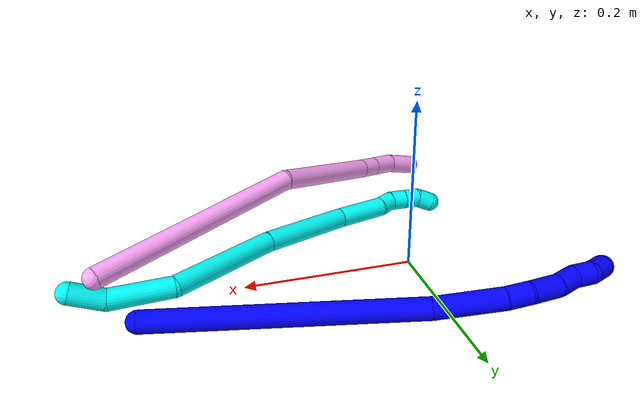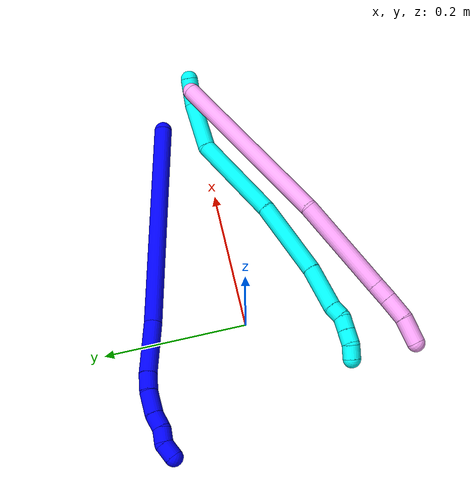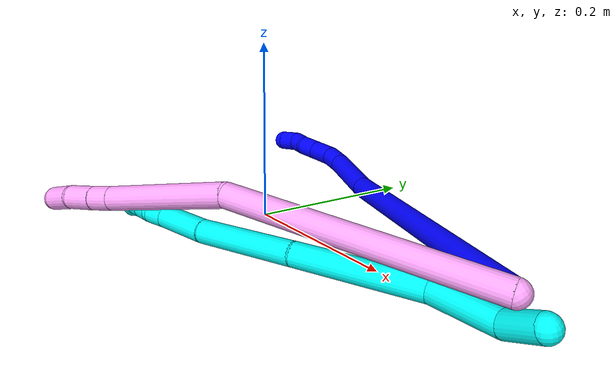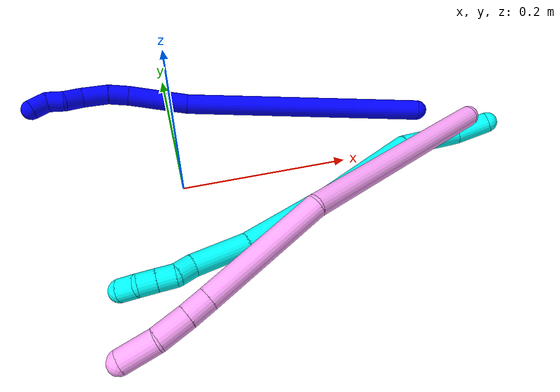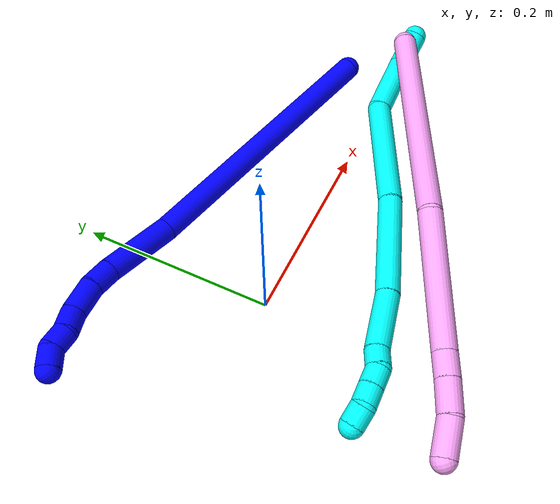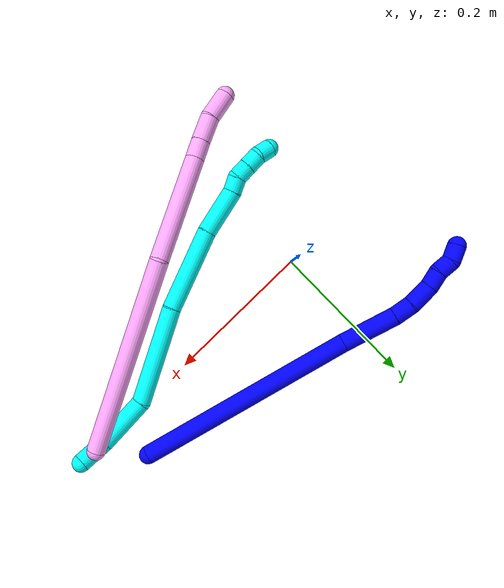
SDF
<sdf version="1.7">
 <world name="default">
  <model name="1">
   <static>0</static>
   <link name="1">
    <collision name="collision-cylinder-e_1_1_4">
     <pose>-0.093249 -0.012982 -0.116872 3.03097 -0.670455 -2.82636</pose>
     <geometry><cylinder><radius>0.0125</radius><length>0.300153</length></cylinder></geometry>
     <surface>
      <friction><ode><mu>1.16</mu><mu2>1.16</mu2><slip1>0</slip1><slip2>0</slip2></ode></friction>
      <contact><ode><kp>1e+06</kp><kd>1</kd><max_vel>0</max_vel><min_depth>0.001</min_depth></ode></contact>
     </surface>
    </collision>
    <visual name="visual-cylinder-e_1_1_4">
     <pose>-0.093249 -0.012982 -0.116872 3.03097 -0.670455 -2.82636</pose>
     <geometry><cylinder><radius>0.0125</radius><length>0.300153</length></cylinder></geometry>
     <material><ambient>0 0 1 1</ambient></material>
    </visual>
    <collision name="collision-cylinder-e_2_4_5">
     <pose>-0.212755 -0.025501 -0.26146 -3.12489 -0.758295 3.09967</pose>
     <geometry><cylinder><radius>0.0125</radius><length>0.076363</length></cylinder></geometry>
     <surface>
      <friction><ode><mu>1.16</mu><mu2>1.16</mu2><slip1>0</slip1><slip2>0</slip2></ode></friction>
      <contact><ode><kp>1e+06</kp><kd>1</kd><max_vel>0</max_vel><min_depth>0.001</min_depth></ode></contact>
     </surface>
    </collision>
    <visual name="visual-cylinder-e_2_4_5">
     <pose>-0.212755 -0.025501 -0.26146 -3.12489 -0.758295 3.09967</pose>
     <geometry><cylinder><radius>0.0125</radius><length>0.076363</length></cylinder></geometry>
     <material><ambient>0 0 1 1</ambient></material>
    </visual>
    <collision name="collision-cylinder-e_3_5_6">
     <pose>-0.248749 -0.026116 -0.297613 3.01453 -0.852862 -2.86334</pose>
     <geometry><cylinder><radius>0.0125</radius><length>0.025858</length></cylinder></geometry>
     <surface>
      <friction><ode><mu>1.16</mu><mu2>1.16</mu2><slip1>0</slip1><slip2>0</slip2></ode></friction>
      <contact><ode><kp>1e+06</kp><kd>1</kd><max_vel>0</max_vel><min_depth>0.001</min_depth></ode></contact>
     </surface>
    </collision>
    <visual name="visual-cylinder-e_3_5_6">
     <pose>-0.248749 -0.026116 -0.297613 3.01453 -0.852862 -2.86334</pose>
     <geometry><cylinder><radius>0.0125</radius><length>0.025858</length></cylinder></geometry>
     <material><ambient>0 0 1 1</ambient></material>
    </visual>
    <collision name="collision-cylinder-e_4_6_7">
     <pose>-0.270523 -0.031819 -0.316069 2.70906 -0.828728 -2.21508</pose>
     <geometry><cylinder><radius>0.0125</radius><length>0.032659</length></cylinder></geometry>
     <surface>
      <friction><ode><mu>1.16</mu><mu2>1.16</mu2><slip1>0</slip1><slip2>0</slip2></ode></friction>
      <contact><ode><kp>1e+06</kp><kd>1</kd><max_vel>0</max_vel><min_depth>0.001</min_depth></ode></contact>
     </surface>
    </collision>
    <visual name="visual-cylinder-e_4_6_7">
     <pose>-0.270523 -0.031819 -0.316069 2.70906 -0.828728 -2.21508</pose>
     <geometry><cylinder><radius>0.0125</radius><length>0.032659</length></cylinder></geometry>
     <material><ambient>0 0 1 1</ambient></material>
    </visual>
    <collision name="collision-cylinder-e_5_7_8">
     <pose>-0.291971 -0.04081 -0.330665 2.37983 -0.979128 -1.85264</pose>
     <geometry><cylinder><radius>0.0125</radius><length>0.022679</length></cylinder></geometry>
     <surface>
      <friction><ode><mu>1.16</mu><mu2>1.16</mu2><slip1>0</slip1><slip2>0</slip2></ode></friction>
      <contact><ode><kp>1e+06</kp><kd>1</kd><max_vel>0</max_vel><min_depth>0.001</min_depth></ode></contact>
     </surface>
    </collision>
    <visual name="visual-cylinder-e_5_7_8">
     <pose>-0.291971 -0.04081 -0.330665 2.37983 -0.979128 -1.85264</pose>
     <geometry><cylinder><radius>0.0125</radius><length>0.022679</length></cylinder></geometry>
     <material><ambient>0 0 1 1</ambient></material>
    </visual>
    <collision name="collision-cylinder-e_6_8_9">
     <pose>-0.308998 -0.047205 -0.342048 2.85184 -0.820152 -2.49398</pose>
     <geometry><cylinder><radius>0.0125</radius><length>0.020826</length></cylinder></geometry>
     <surface>
      <friction><ode><mu>1.16</mu><mu2>1.16</mu2><slip1>0</slip1><slip2>0</slip2></ode></friction>
      <contact><ode><kp>1e+06</kp><kd>1</kd><max_vel>0</max_vel><min_depth>0.001</min_depth></ode></contact>
     </surface>
    </collision>
    <visual name="visual-cylinder-e_6_8_9">
     <pose>-0.308998 -0.047205 -0.342048 2.85184 -0.820152 -2.49398</pose>
     <geometry><cylinder><radius>0.0125</radius><length>0.020826</length></cylinder></geometry>
     <material><ambient>0 0 1 1</ambient></material>
    </visual>
    <collision name="collision-cylinder-e_7_9_2">
     <pose>-0.324174 -0.055791 -0.352727 2.1042 -0.781924 -1.25076</pose>
     <geometry><cylinder><radius>0.0125</radius><length>0.021462</length></cylinder></geometry>
     <surface>
      <friction><ode><mu>1.16</mu><mu2>1.16</mu2><slip1>0</slip1><slip2>0</slip2></ode></friction>
      <contact><ode><kp>1e+06</kp><kd>1</kd><max_vel>0</max_vel><min_depth>0.001</min_depth></ode></contact>
     </surface>
    </collision>
    <visual name="visual-cylinder-e_7_9_2">
     <pose>-0.324174 -0.055791 -0.352727 2.1042 -0.781924 -1.25076</pose>
     <geometry><cylinder><radius>0.0125</radius><length>0.021462</length></cylinder></geometry>
     <material><ambient>0 0 1 1</ambient></material>
    </visual>
    <collision name="collision-sphere-2">
     <pose>-0.331735 -0.062347 -0.356598 0 -0 0</pose>
     <geometry><sphere><radius>0.0125</radius></sphere></geometry>
     <surface>
      <friction><ode><mu>1.16</mu><mu2>1.16</mu2><slip1>0</slip1><slip2>0</slip2></ode></friction>
      <contact><ode><kp>1e+06</kp><kd>1</kd><max_vel>0</max_vel><min_depth>0.001</min_depth></ode></contact>
     </surface>
    </collision>
    <visual name="visual-sphere-2">
     <pose>-0.331735 -0.062347 -0.356598 0 -0 0</pose>
     <geometry><sphere><radius>0.0125</radius></sphere></geometry>
     <material><ambient>0 0 1 1</ambient></material>
    </visual>
    <collision name="collision-sphere-9">
     <pose>-0.316612 -0.049235 -0.348855 0 -0 0</pose>
     <geometry><sphere><radius>0.0125</radius></sphere></geometry>
     <surface>
      <friction><ode><mu>1.16</mu><mu2>1.16</mu2><slip1>0</slip1><slip2>0</slip2></ode></friction>
      <contact><ode><kp>1e+06</kp><kd>1</kd><max_vel>0</max_vel><min_depth>0.001</min_depth></ode></contact>
     </surface>
    </collision>
    <visual name="visual-sphere-9">
     <pose>-0.316612 -0.049235 -0.348855 0 -0 0</pose>
     <geometry><sphere><radius>0.0125</radius></sphere></geometry>
     <material><ambient>0 0 1 1</ambient></material>
    </visual>
    <collision name="collision-sphere-4">
     <pose>-0.186498 -0.025964 -0.233744 0 -0 0</pose>
     <geometry><sphere><radius>0.0125</radius></sphere></geometry>
     <surface>
      <friction><ode><mu>1.16</mu><mu2>1.16</mu2><slip1>0</slip1><slip2>0</slip2></ode></friction>
      <contact><ode><kp>1e+06</kp><kd>1</kd><max_vel>0</max_vel><min_depth>0.001</min_depth></ode></contact>
     </surface>
    </collision>
    <visual name="visual-sphere-4">
     <pose>-0.186498 -0.025964 -0.233744 0 -0 0</pose>
     <geometry><sphere><radius>0.0125</radius></sphere></geometry>
     <material><ambient>0 0 1 1</ambient></material>
    </visual>
    <collision name="collision-sphere-1">
     <geometry><sphere><radius>0.0125</radius></sphere></geometry>
     <surface>
      <friction><ode><mu>1.16</mu><mu2>1.16</mu2><slip1>0</slip1><slip2>0</slip2></ode></friction>
      <contact><ode><kp>1e+06</kp><kd>1</kd><max_vel>0</max_vel><min_depth>0.001</min_depth></ode></contact>
     </surface>
    </collision>
    <visual name="visual-sphere-1">
     <geometry><sphere><radius>0.0125</radius></sphere></geometry>
     <material><ambient>0 0 1 1</ambient></material>
    </visual>
    <collision name="collision-sphere-8">
     <pose>-0.301383 -0.045176 -0.335242 0 -0 0</pose>
     <geometry><sphere><radius>0.0125</radius></sphere></geometry>
     <surface>
      <friction><ode><mu>1.16</mu><mu2>1.16</mu2><slip1>0</slip1><slip2>0</slip2></ode></friction>
      <contact><ode><kp>1e+06</kp><kd>1</kd><max_vel>0</max_vel><min_depth>0.001</min_depth></ode></contact>
     </surface>
    </collision>
    <visual name="visual-sphere-8">
     <pose>-0.301383 -0.045176 -0.335242 0 -0 0</pose>
     <geometry><sphere><radius>0.0125</radius></sphere></geometry>
     <material><ambient>0 0 1 1</ambient></material>
    </visual>
    <collision name="collision-sphere-5">
     <pose>-0.239011 -0.025038 -0.289176 0 -0 0</pose>
     <geometry><sphere><radius>0.0125</radius></sphere></geometry>
     <surface>
      <friction><ode><mu>1.16</mu><mu2>1.16</mu2><slip1>0</slip1><slip2>0</slip2></ode></friction>
      <contact><ode><kp>1e+06</kp><kd>1</kd><max_vel>0</max_vel><min_depth>0.001</min_depth></ode></contact>
     </surface>
    </collision>
    <visual name="visual-sphere-5">
     <pose>-0.239011 -0.025038 -0.289176 0 -0 0</pose>
     <geometry><sphere><radius>0.0125</radius></sphere></geometry>
     <material><ambient>0 0 1 1</ambient></material>
    </visual>
    <collision name="collision-sphere-6">
     <pose>-0.258487 -0.027194 -0.30605 0 -0 0</pose>
     <geometry><sphere><radius>0.0125</radius></sphere></geometry>
     <surface>
      <friction><ode><mu>1.16</mu><mu2>1.16</mu2><slip1>0</slip1><slip2>0</slip2></ode></friction>
      <contact><ode><kp>1e+06</kp><kd>1</kd><max_vel>0</max_vel><min_depth>0.001</min_depth></ode></contact>
     </surface>
    </collision>
    <visual name="visual-sphere-6">
     <pose>-0.258487 -0.027194 -0.30605 0 -0 0</pose>
     <geometry><sphere><radius>0.0125</radius></sphere></geometry>
     <material><ambient>0 0 1 1</ambient></material>
    </visual>
    <collision name="collision-sphere-7">
     <pose>-0.282559 -0.036445 -0.326088 0 -0 0</pose>
     <geometry><sphere><radius>0.0125</radius></sphere></geometry>
     <surface>
      <friction><ode><mu>1.16</mu><mu2>1.16</mu2><slip1>0</slip1><slip2>0</slip2></ode></friction>
      <contact><ode><kp>1e+06</kp><kd>1</kd><max_vel>0</max_vel><min_depth>0.001</min_depth></ode></contact>
     </surface>
    </collision>
    <visual name="visual-sphere-7">
     <pose>-0.282559 -0.036445 -0.326088 0 -0 0</pose>
     <geometry><sphere><radius>0.0125</radius></sphere></geometry>
     <material><ambient>0 0 1 1</ambient></material>
    </visual>
    <inertial>
     <pose>-0.159034 -0.021329 -0.190513 0 -0 0</pose>
     <mass>0.5</mass>
     <inertia>
      <ixx>-0.002301</ixx>
      <ixy>0</ixy>
      <ixz>0</ixz>
      <iyy>0.001678</iyy>
      <iyz>0</iyz>
      <izz>0.001615</izz>
     </inertia>
    </inertial>
   </link>
   <pose>0.317071 0.051595 0.012116 0.922068 0.744205 0.355994</pose>
  </model>
  <model name="3">
   <static>0</static>
   <link name="3">
    <collision name="collision-cylinder-e_1_1_4">
     <pose>-0.018708 0.000152 -0.006574 -3.11844 -1.2328 3.10892</pose>
     <geometry><cylinder><radius>0.0125</radius><length>0.03966</length></cylinder></geometry>
     <surface>
      <friction><ode><mu>1.16</mu><mu2>1.16</mu2><slip1>0</slip1><slip2>0</slip2></ode></friction>
      <contact><ode><kp>1e+06</kp><kd>1</kd><max_vel>0</max_vel><min_depth>0.001</min_depth></ode></contact>
     </surface>
    </collision>
    <visual name="visual-cylinder-e_1_1_4">
     <pose>-0.018708 0.000152 -0.006574 -3.11844 -1.2328 3.10892</pose>
     <geometry><cylinder><radius>0.0125</radius><length>0.03966</length></cylinder></geometry>
     <material><ambient>0.003922 1 0.996078 1</ambient></material>
    </visual>
    <collision name="collision-cylinder-e_2_4_5">
     <pose>-0.073826 -0.000347 -0.011537 0.384258 -1.52311 -0.366765</pose>
     <geometry><cylinder><radius>0.0125</radius><length>0.072902</length></cylinder></geometry>
     <surface>
      <friction><ode><mu>1.16</mu><mu2>1.16</mu2><slip1>0</slip1><slip2>0</slip2></ode></friction>
      <contact><ode><kp>1e+06</kp><kd>1</kd><max_vel>0</max_vel><min_depth>0.001</min_depth></ode></contact>
     </surface>
    </collision>
    <visual name="visual-cylinder-e_2_4_5">
     <pose>-0.073826 -0.000347 -0.011537 0.384258 -1.52311 -0.366765</pose>
     <geometry><cylinder><radius>0.0125</radius><length>0.072902</length></cylinder></geometry>
     <material><ambient>0.003922 1 0.996078 1</ambient></material>
    </visual>
    <collision name="collision-cylinder-e_3_5_6">
     <pose>-0.169569 -0.028057 0.001071 1.18478 -1.11335 -0.793285</pose>
     <geometry><cylinder><radius>0.0125</radius><length>0.132266</length></cylinder></geometry>
     <surface>
      <friction><ode><mu>1.16</mu><mu2>1.16</mu2><slip1>0</slip1><slip2>0</slip2></ode></friction>
      <contact><ode><kp>1e+06</kp><kd>1</kd><max_vel>0</max_vel><min_depth>0.001</min_depth></ode></contact>
     </surface>
    </collision>
    <visual name="visual-cylinder-e_3_5_6">
     <pose>-0.169569 -0.028057 0.001071 1.18478 -1.11335 -0.793285</pose>
     <geometry><cylinder><radius>0.0125</radius><length>0.132266</length></cylinder></geometry>
     <material><ambient>0.003922 1 0.996078 1</ambient></material>
    </visual>
    <collision name="collision-cylinder-e_4_6_7">
     <pose>-0.281697 -0.073085 0.016896 1.30831 -1.23197 -0.994564</pose>
     <geometry><cylinder><radius>0.0125</radius><length>0.111955</length></cylinder></geometry>
     <surface>
      <friction><ode><mu>1.16</mu><mu2>1.16</mu2><slip1>0</slip1><slip2>0</slip2></ode></friction>
      <contact><ode><kp>1e+06</kp><kd>1</kd><max_vel>0</max_vel><min_depth>0.001</min_depth></ode></contact>
     </surface>
    </collision>
    <visual name="visual-cylinder-e_4_6_7">
     <pose>-0.281697 -0.073085 0.016896 1.30831 -1.23197 -0.994564</pose>
     <geometry><cylinder><radius>0.0125</radius><length>0.111955</length></cylinder></geometry>
     <material><ambient>0.003922 1 0.996078 1</ambient></material>
    </visual>
    <collision name="collision-cylinder-e_5_7_8">
     <pose>-0.365289 -0.096813 0.024642 1.1018 -1.36414 -0.92554</pose>
     <geometry><cylinder><radius>0.0125</radius><length>0.062933</length></cylinder></geometry>
     <surface>
      <friction><ode><mu>1.16</mu><mu2>1.16</mu2><slip1>0</slip1><slip2>0</slip2></ode></friction>
      <contact><ode><kp>1e+06</kp><kd>1</kd><max_vel>0</max_vel><min_depth>0.001</min_depth></ode></contact>
     </surface>
    </collision>
    <visual name="visual-cylinder-e_5_7_8">
     <pose>-0.365289 -0.096813 0.024642 1.1018 -1.36414 -0.92554</pose>
     <geometry><cylinder><radius>0.0125</radius><length>0.062933</length></cylinder></geometry>
     <material><ambient>0.003922 1 0.996078 1</ambient></material>
    </visual>
    <collision name="collision-cylinder-e_6_8_9">
     <pose>-0.405123 -0.106331 0.029843 1.02499 -1.11792 -0.676791</pose>
     <geometry><cylinder><radius>0.0125</radius><length>0.020101</length></cylinder></geometry>
     <surface>
      <friction><ode><mu>1.16</mu><mu2>1.16</mu2><slip1>0</slip1><slip2>0</slip2></ode></friction>
      <contact><ode><kp>1e+06</kp><kd>1</kd><max_vel>0</max_vel><min_depth>0.001</min_depth></ode></contact>
     </surface>
    </collision>
    <visual name="visual-cylinder-e_6_8_9">
     <pose>-0.405123 -0.106331 0.029843 1.02499 -1.11792 -0.676791</pose>
     <geometry><cylinder><radius>0.0125</radius><length>0.020101</length></cylinder></geometry>
     <material><ambient>0.003922 1 0.996078 1</ambient></material>
    </visual>
    <collision name="collision-cylinder-e_7_9_10">
     <pose>-0.424209 -0.11025 0.032123 1.59013 -1.55485 -1.57418</pose>
     <geometry><cylinder><radius>0.0125</radius><length>0.020101</length></cylinder></geometry>
     <surface>
      <friction><ode><mu>1.16</mu><mu2>1.16</mu2><slip1>0</slip1><slip2>0</slip2></ode></friction>
      <contact><ode><kp>1e+06</kp><kd>1</kd><max_vel>0</max_vel><min_depth>0.001</min_depth></ode></contact>
     </surface>
    </collision>
    <visual name="visual-cylinder-e_7_9_10">
     <pose>-0.424209 -0.11025 0.032123 1.59013 -1.55485 -1.57418</pose>
     <geometry><cylinder><radius>0.0125</radius><length>0.020101</length></cylinder></geometry>
     <material><ambient>0.003922 1 0.996078 1</ambient></material>
    </visual>
    <collision name="collision-cylinder-e_8_10_11">
     <pose>-0.444262 -0.110638 0.032077 1.75364 -1.54766 -1.73085</pose>
     <geometry><cylinder><radius>0.0125</radius><length>0.020013</length></cylinder></geometry>
     <surface>
      <friction><ode><mu>1.16</mu><mu2>1.16</mu2><slip1>0</slip1><slip2>0</slip2></ode></friction>
      <contact><ode><kp>1e+06</kp><kd>1</kd><max_vel>0</max_vel><min_depth>0.001</min_depth></ode></contact>
     </surface>
    </collision>
    <visual name="visual-cylinder-e_8_10_11">
     <pose>-0.444262 -0.110638 0.032077 1.75364 -1.54766 -1.73085</pose>
     <geometry><cylinder><radius>0.0125</radius><length>0.020013</length></cylinder></geometry>
     <material><ambient>0.003922 1 0.996078 1</ambient></material>
    </visual>
    <collision name="collision-cylinder-e_9_11_2">
     <pose>-0.463527 -0.109944 0.028283 -2.9007 -1.17554 2.78224</pose>
     <geometry><cylinder><radius>0.0125</radius><length>0.020069</length></cylinder></geometry>
     <surface>
      <friction><ode><mu>1.16</mu><mu2>1.16</mu2><slip1>0</slip1><slip2>0</slip2></ode></friction>
      <contact><ode><kp>1e+06</kp><kd>1</kd><max_vel>0</max_vel><min_depth>0.001</min_depth></ode></contact>
     </surface>
    </collision>
    <visual name="visual-cylinder-e_9_11_2">
     <pose>-0.463527 -0.109944 0.028283 -2.9007 -1.17554 2.78224</pose>
     <geometry><cylinder><radius>0.0125</radius><length>0.020069</length></cylinder></geometry>
     <material><ambient>0.003922 1 0.996078 1</ambient></material>
    </visual>
    <collision name="collision-sphere-2">
     <pose>-0.472788 -0.109022 0.024531 0 -0 0</pose>
     <geometry><sphere><radius>0.0125</radius></sphere></geometry>
     <surface>
      <friction><ode><mu>1.16</mu><mu2>1.16</mu2><slip1>0</slip1><slip2>0</slip2></ode></friction>
      <contact><ode><kp>1e+06</kp><kd>1</kd><max_vel>0</max_vel><min_depth>0.001</min_depth></ode></contact>
     </surface>
    </collision>
    <visual name="visual-sphere-2">
     <pose>-0.472788 -0.109022 0.024531 0 -0 0</pose>
     <geometry><sphere><radius>0.0125</radius></sphere></geometry>
     <material><ambient>0.003922 1 0.996078 1</ambient></material>
    </visual>
    <collision name="collision-sphere-11">
     <pose>-0.454266 -0.110866 0.032035 0 -0 0</pose>
     <geometry><sphere><radius>0.0125</radius></sphere></geometry>
     <surface>
      <friction><ode><mu>1.16</mu><mu2>1.16</mu2><slip1>0</slip1><slip2>0</slip2></ode></friction>
      <contact><ode><kp>1e+06</kp><kd>1</kd><max_vel>0</max_vel><min_depth>0.001</min_depth></ode></contact>
     </surface>
    </collision>
    <visual name="visual-sphere-11">
     <pose>-0.454266 -0.110866 0.032035 0 -0 0</pose>
     <geometry><sphere><radius>0.0125</radius></sphere></geometry>
     <material><ambient>0.003922 1 0.996078 1</ambient></material>
    </visual>
    <collision name="collision-sphere-10">
     <pose>-0.434259 -0.110411 0.03212 0 -0 0</pose>
     <geometry><sphere><radius>0.0125</radius></sphere></geometry>
     <surface>
      <friction><ode><mu>1.16</mu><mu2>1.16</mu2><slip1>0</slip1><slip2>0</slip2></ode></friction>
      <contact><ode><kp>1e+06</kp><kd>1</kd><max_vel>0</max_vel><min_depth>0.001</min_depth></ode></contact>
     </surface>
    </collision>
    <visual name="visual-sphere-10">
     <pose>-0.434259 -0.110411 0.03212 0 -0 0</pose>
     <geometry><sphere><radius>0.0125</radius></sphere></geometry>
     <material><ambient>0.003922 1 0.996078 1</ambient></material>
    </visual>
    <collision name="collision-sphere-9">
     <pose>-0.41416 -0.11009 0.032126 0 -0 0</pose>
     <geometry><sphere><radius>0.0125</radius></sphere></geometry>
     <surface>
      <friction><ode><mu>1.16</mu><mu2>1.16</mu2><slip1>0</slip1><slip2>0</slip2></ode></friction>
      <contact><ode><kp>1e+06</kp><kd>1</kd><max_vel>0</max_vel><min_depth>0.001</min_depth></ode></contact>
     </surface>
    </collision>
    <visual name="visual-sphere-9">
     <pose>-0.41416 -0.11009 0.032126 0 -0 0</pose>
     <geometry><sphere><radius>0.0125</radius></sphere></geometry>
     <material><ambient>0.003922 1 0.996078 1</ambient></material>
    </visual>
    <collision name="collision-sphere-4">
     <pose>-0.037416 0.000304 -0.013148 0 -0 0</pose>
     <geometry><sphere><radius>0.0125</radius></sphere></geometry>
     <surface>
      <friction><ode><mu>1.16</mu><mu2>1.16</mu2><slip1>0</slip1><slip2>0</slip2></ode></friction>
      <contact><ode><kp>1e+06</kp><kd>1</kd><max_vel>0</max_vel><min_depth>0.001</min_depth></ode></contact>
     </surface>
    </collision>
    <visual name="visual-sphere-4">
     <pose>-0.037416 0.000304 -0.013148 0 -0 0</pose>
     <geometry><sphere><radius>0.0125</radius></sphere></geometry>
     <material><ambient>0.003922 1 0.996078 1</ambient></material>
    </visual>
    <collision name="collision-sphere-1">
     <geometry><sphere><radius>0.0125</radius></sphere></geometry>
     <surface>
      <friction><ode><mu>1.16</mu><mu2>1.16</mu2><slip1>0</slip1><slip2>0</slip2></ode></friction>
      <contact><ode><kp>1e+06</kp><kd>1</kd><max_vel>0</max_vel><min_depth>0.001</min_depth></ode></contact>
     </surface>
    </collision>
    <visual name="visual-sphere-1">
     <geometry><sphere><radius>0.0125</radius></sphere></geometry>
     <material><ambient>0.003922 1 0.996078 1</ambient></material>
    </visual>
    <collision name="collision-sphere-8">
     <pose>-0.396085 -0.102573 0.02756 0 -0 0</pose>
     <geometry><sphere><radius>0.0125</radius></sphere></geometry>
     <surface>
      <friction><ode><mu>1.16</mu><mu2>1.16</mu2><slip1>0</slip1><slip2>0</slip2></ode></friction>
      <contact><ode><kp>1e+06</kp><kd>1</kd><max_vel>0</max_vel><min_depth>0.001</min_depth></ode></contact>
     </surface>
    </collision>
    <visual name="visual-sphere-8">
     <pose>-0.396085 -0.102573 0.02756 0 -0 0</pose>
     <geometry><sphere><radius>0.0125</radius></sphere></geometry>
     <material><ambient>0.003922 1 0.996078 1</ambient></material>
    </visual>
    <collision name="collision-sphere-5">
     <pose>-0.110236 -0.000998 -0.009926 0 -0 0</pose>
     <geometry><sphere><radius>0.0125</radius></sphere></geometry>
     <surface>
      <friction><ode><mu>1.16</mu><mu2>1.16</mu2><slip1>0</slip1><slip2>0</slip2></ode></friction>
      <contact><ode><kp>1e+06</kp><kd>1</kd><max_vel>0</max_vel><min_depth>0.001</min_depth></ode></contact>
     </surface>
    </collision>
    <visual name="visual-sphere-5">
     <pose>-0.110236 -0.000998 -0.009926 0 -0 0</pose>
     <geometry><sphere><radius>0.0125</radius></sphere></geometry>
     <material><ambient>0.003922 1 0.996078 1</ambient></material>
    </visual>
    <collision name="collision-sphere-6">
     <pose>-0.228902 -0.055117 0.012068 0 -0 0</pose>
     <geometry><sphere><radius>0.0125</radius></sphere></geometry>
     <surface>
      <friction><ode><mu>1.16</mu><mu2>1.16</mu2><slip1>0</slip1><slip2>0</slip2></ode></friction>
      <contact><ode><kp>1e+06</kp><kd>1</kd><max_vel>0</max_vel><min_depth>0.001</min_depth></ode></contact>
     </surface>
    </collision>
    <visual name="visual-sphere-6">
     <pose>-0.228902 -0.055117 0.012068 0 -0 0</pose>
     <geometry><sphere><radius>0.0125</radius></sphere></geometry>
     <material><ambient>0.003922 1 0.996078 1</ambient></material>
    </visual>
    <collision name="collision-sphere-7">
     <pose>-0.334492 -0.091054 0.021723 0 -0 0</pose>
     <geometry><sphere><radius>0.0125</radius></sphere></geometry>
     <surface>
      <friction><ode><mu>1.16</mu><mu2>1.16</mu2><slip1>0</slip1><slip2>0</slip2></ode></friction>
      <contact><ode><kp>1e+06</kp><kd>1</kd><max_vel>0</max_vel><min_depth>0.001</min_depth></ode></contact>
     </surface>
    </collision>
    <visual name="visual-sphere-7">
     <pose>-0.334492 -0.091054 0.021723 0 -0 0</pose>
     <geometry><sphere><radius>0.0125</radius></sphere></geometry>
     <material><ambient>0.003922 1 0.996078 1</ambient></material>
    </visual>
    <inertial>
     <pose>-0.235884 -0.053559 0.009875 0 -0 0</pose>
     <mass>0.5</mass>
     <inertia>
      <ixx>-5.2e-05</ixx>
      <ixy>0</ixy>
      <ixz>0</ixz>
      <iyy>0.00024</iyy>
      <iyz>0</iyz>
      <izz>0.000489</izz>
     </inertia>
    </inertial>
   </link>
   <pose>0.385022 -0.003141 0.025317 0.223522 -0.028723 0.030268</pose>
  </model>
  <model name="4">
   <static>0</static>
   <link name="4">
    <collision name="collision-cylinder-e_1_1_4">
     <pose>-0.062915 -0.072615 0.089892 0.679483 -0.49857 -0.179477</pose>
     <geometry><cylinder><radius>0.0125</radius><length>0.263148</length></cylinder></geometry>
     <surface>
      <friction><ode><mu>1.16</mu><mu2>1.16</mu2><slip1>0</slip1><slip2>0</slip2></ode></friction>
      <contact><ode><kp>1e+06</kp><kd>1</kd><max_vel>0</max_vel><min_depth>0.001</min_depth></ode></contact>
     </surface>
    </collision>
    <visual name="visual-cylinder-e_1_1_4">
     <pose>-0.062915 -0.072615 0.089892 0.679483 -0.49857 -0.179477</pose>
     <geometry><cylinder><radius>0.0125</radius><length>0.263148</length></cylinder></geometry>
     <material><ambient>1 0.65098 0.996078 1</ambient></material>
    </visual>
    <collision name="collision-cylinder-e_2_4_5">
     <pose>-0.143077 -0.17699 0.240013 0.485257 -0.248083 -0.061699</pose>
     <geometry><cylinder><radius>0.0125</radius><length>0.140481</length></cylinder></geometry>
     <surface>
      <friction><ode><mu>1.16</mu><mu2>1.16</mu2><slip1>0</slip1><slip2>0</slip2></ode></friction>
      <contact><ode><kp>1e+06</kp><kd>1</kd><max_vel>0</max_vel><min_depth>0.001</min_depth></ode></contact>
     </surface>
    </collision>
    <visual name="visual-cylinder-e_2_4_5">
     <pose>-0.143077 -0.17699 0.240013 0.485257 -0.248083 -0.061699</pose>
     <geometry><cylinder><radius>0.0125</radius><length>0.140481</length></cylinder></geometry>
     <material><ambient>1 0.65098 0.996078 1</ambient></material>
    </visual>
    <collision name="collision-cylinder-e_3_5_6">
     <pose>-0.16372 -0.214532 0.310841 0.499434 -0.274169 -0.070336</pose>
     <geometry><cylinder><radius>0.0125</radius><length>0.025084</length></cylinder></geometry>
     <surface>
      <friction><ode><mu>1.16</mu><mu2>1.16</mu2><slip1>0</slip1><slip2>0</slip2></ode></friction>
      <contact><ode><kp>1e+06</kp><kd>1</kd><max_vel>0</max_vel><min_depth>0.001</min_depth></ode></contact>
     </surface>
    </collision>
    <visual name="visual-cylinder-e_3_5_6">
     <pose>-0.16372 -0.214532 0.310841 0.499434 -0.274169 -0.070336</pose>
     <geometry><cylinder><radius>0.0125</radius><length>0.025084</length></cylinder></geometry>
     <material><ambient>1 0.65098 0.996078 1</ambient></material>
    </visual>
    <collision name="collision-cylinder-e_4_6_7">
     <pose>-0.171653 -0.228746 0.33534 0.545252 -0.272216 -0.076544</pose>
     <geometry><cylinder><radius>0.0125</radius><length>0.033757</length></cylinder></geometry>
     <surface>
      <friction><ode><mu>1.16</mu><mu2>1.16</mu2><slip1>0</slip1><slip2>0</slip2></ode></friction>
      <contact><ode><kp>1e+06</kp><kd>1</kd><max_vel>0</max_vel><min_depth>0.001</min_depth></ode></contact>
     </surface>
    </collision>
    <visual name="visual-cylinder-e_4_6_7">
     <pose>-0.171653 -0.228746 0.33534 0.545252 -0.272216 -0.076544</pose>
     <geometry><cylinder><radius>0.0125</radius><length>0.033757</length></cylinder></geometry>
     <material><ambient>1 0.65098 0.996078 1</ambient></material>
    </visual>
    <collision name="collision-cylinder-e_5_7_2">
     <pose>-0.177212 -0.248536 0.364141 0.651295 -0.05442 -0.01838</pose>
     <geometry><cylinder><radius>0.0125</radius><length>0.03753</length></cylinder></geometry>
     <surface>
      <friction><ode><mu>1.16</mu><mu2>1.16</mu2><slip1>0</slip1><slip2>0</slip2></ode></friction>
      <contact><ode><kp>1e+06</kp><kd>1</kd><max_vel>0</max_vel><min_depth>0.001</min_depth></ode></contact>
     </surface>
    </collision>
    <visual name="visual-cylinder-e_5_7_2">
     <pose>-0.177212 -0.248536 0.364141 0.651295 -0.05442 -0.01838</pose>
     <geometry><cylinder><radius>0.0125</radius><length>0.03753</length></cylinder></geometry>
     <material><ambient>1 0.65098 0.996078 1</ambient></material>
    </visual>
    <collision name="collision-sphere-2">
     <pose>-0.178233 -0.259895 0.379043 0 -0 0</pose>
     <geometry><sphere><radius>0.0125</radius></sphere></geometry>
     <surface>
      <friction><ode><mu>1.16</mu><mu2>1.16</mu2><slip1>0</slip1><slip2>0</slip2></ode></friction>
      <contact><ode><kp>1e+06</kp><kd>1</kd><max_vel>0</max_vel><min_depth>0.001</min_depth></ode></contact>
     </surface>
    </collision>
    <visual name="visual-sphere-2">
     <pose>-0.178233 -0.259895 0.379043 0 -0 0</pose>
     <geometry><sphere><radius>0.0125</radius></sphere></geometry>
     <material><ambient>1 0.65098 0.996078 1</ambient></material>
    </visual>
    <collision name="collision-sphere-7">
     <pose>-0.176192 -0.237177 0.349239 0 -0 0</pose>
     <geometry><sphere><radius>0.0125</radius></sphere></geometry>
     <surface>
      <friction><ode><mu>1.16</mu><mu2>1.16</mu2><slip1>0</slip1><slip2>0</slip2></ode></friction>
      <contact><ode><kp>1e+06</kp><kd>1</kd><max_vel>0</max_vel><min_depth>0.001</min_depth></ode></contact>
     </surface>
    </collision>
    <visual name="visual-sphere-7">
     <pose>-0.176192 -0.237177 0.349239 0 -0 0</pose>
     <geometry><sphere><radius>0.0125</radius></sphere></geometry>
     <material><ambient>1 0.65098 0.996078 1</ambient></material>
    </visual>
    <collision name="collision-sphere-6">
     <pose>-0.167115 -0.220314 0.32144 0 -0 0</pose>
     <geometry><sphere><radius>0.0125</radius></sphere></geometry>
     <surface>
      <friction><ode><mu>1.16</mu><mu2>1.16</mu2><slip1>0</slip1><slip2>0</slip2></ode></friction>
      <contact><ode><kp>1e+06</kp><kd>1</kd><max_vel>0</max_vel><min_depth>0.001</min_depth></ode></contact>
     </surface>
    </collision>
    <visual name="visual-sphere-6">
     <pose>-0.167115 -0.220314 0.32144 0 -0 0</pose>
     <geometry><sphere><radius>0.0125</radius></sphere></geometry>
     <material><ambient>1 0.65098 0.996078 1</ambient></material>
    </visual>
    <collision name="collision-sphere-5">
     <pose>-0.160324 -0.208749 0.300242 0 -0 0</pose>
     <geometry><sphere><radius>0.0125</radius></sphere></geometry>
     <surface>
      <friction><ode><mu>1.16</mu><mu2>1.16</mu2><slip1>0</slip1><slip2>0</slip2></ode></friction>
      <contact><ode><kp>1e+06</kp><kd>1</kd><max_vel>0</max_vel><min_depth>0.001</min_depth></ode></contact>
     </surface>
    </collision>
    <visual name="visual-sphere-5">
     <pose>-0.160324 -0.208749 0.300242 0 -0 0</pose>
     <geometry><sphere><radius>0.0125</radius></sphere></geometry>
     <material><ambient>1 0.65098 0.996078 1</ambient></material>
    </visual>
    <collision name="collision-sphere-1">
     <geometry><sphere><radius>0.0125</radius></sphere></geometry>
     <surface>
      <friction><ode><mu>1.16</mu><mu2>1.16</mu2><slip1>0</slip1><slip2>0</slip2></ode></friction>
      <contact><ode><kp>1e+06</kp><kd>1</kd><max_vel>0</max_vel><min_depth>0.001</min_depth></ode></contact>
     </surface>
    </collision>
    <visual name="visual-sphere-1">
     <geometry><sphere><radius>0.0125</radius></sphere></geometry>
     <material><ambient>1 0.65098 0.996078 1</ambient></material>
    </visual>
    <collision name="collision-sphere-4">
     <pose>-0.125829 -0.14523 0.179783 0 -0 0</pose>
     <geometry><sphere><radius>0.0125</radius></sphere></geometry>
     <surface>
      <friction><ode><mu>1.16</mu><mu2>1.16</mu2><slip1>0</slip1><slip2>0</slip2></ode></friction>
      <contact><ode><kp>1e+06</kp><kd>1</kd><max_vel>0</max_vel><min_depth>0.001</min_depth></ode></contact>
     </surface>
    </collision>
    <visual name="visual-sphere-4">
     <pose>-0.125829 -0.14523 0.179783 0 -0 0</pose>
     <geometry><sphere><radius>0.0125</radius></sphere></geometry>
     <material><ambient>1 0.65098 0.996078 1</ambient></material>
    </visual>
    <inertial>
     <pose>-0.106415 -0.132806 0.180311 0 -0 0</pose>
     <mass>0.5</mass>
     <inertia>
      <ixx>0.001294</ixx>
      <ixy>0</ixy>
      <ixz>0</ixz>
      <iyy>0.001199</iyy>
      <iyz>0</iyz>
      <izz>0.001778</izz>
     </inertia>
    </inertial>
   </link>
   <pose>0.355957 -0.00105 0.040054 -2.7063 0.898627 1.38313</pose>
  </model>
 </world>
</sdf>
